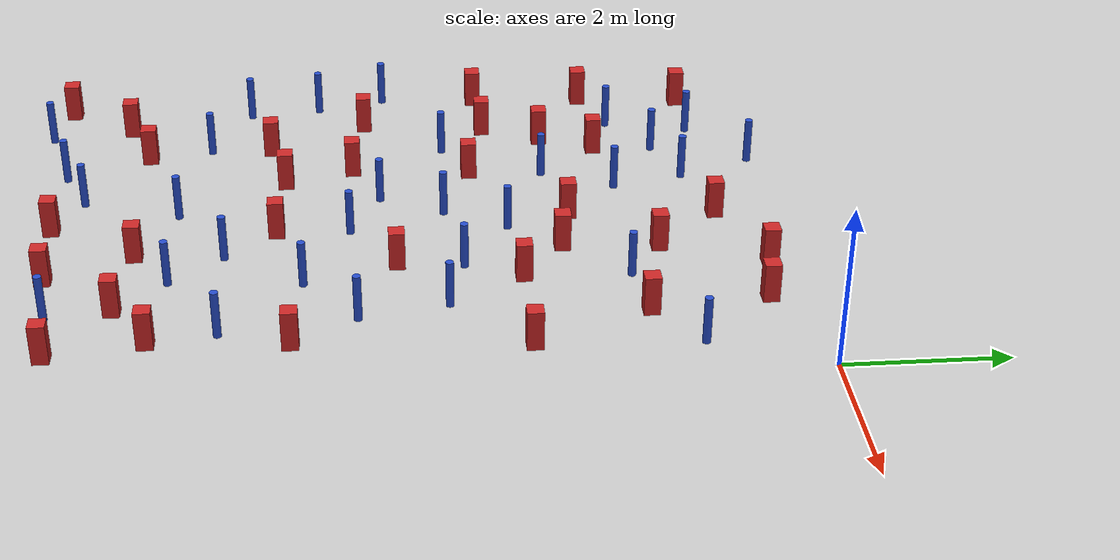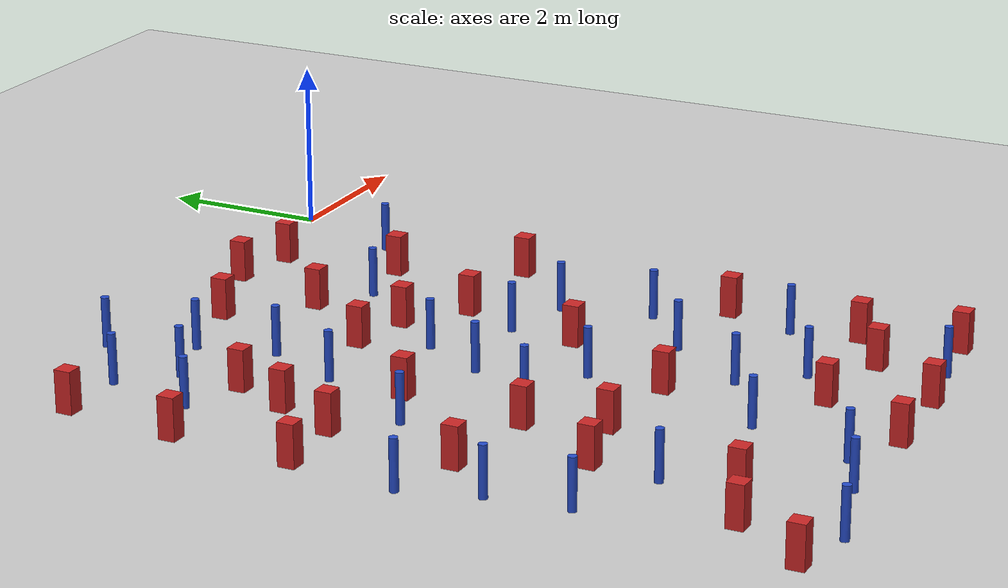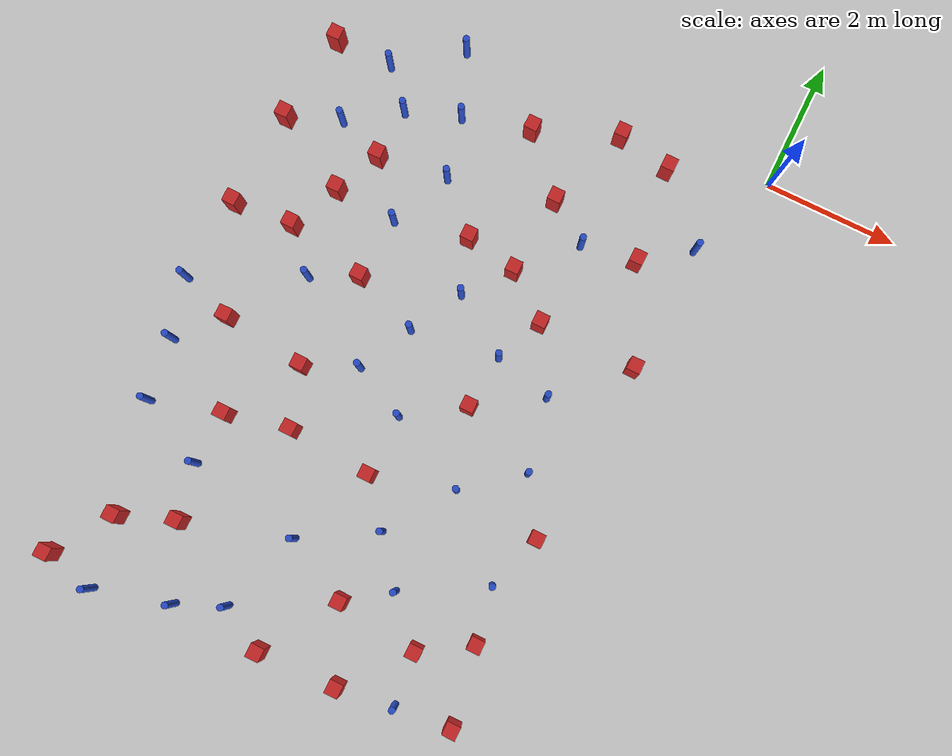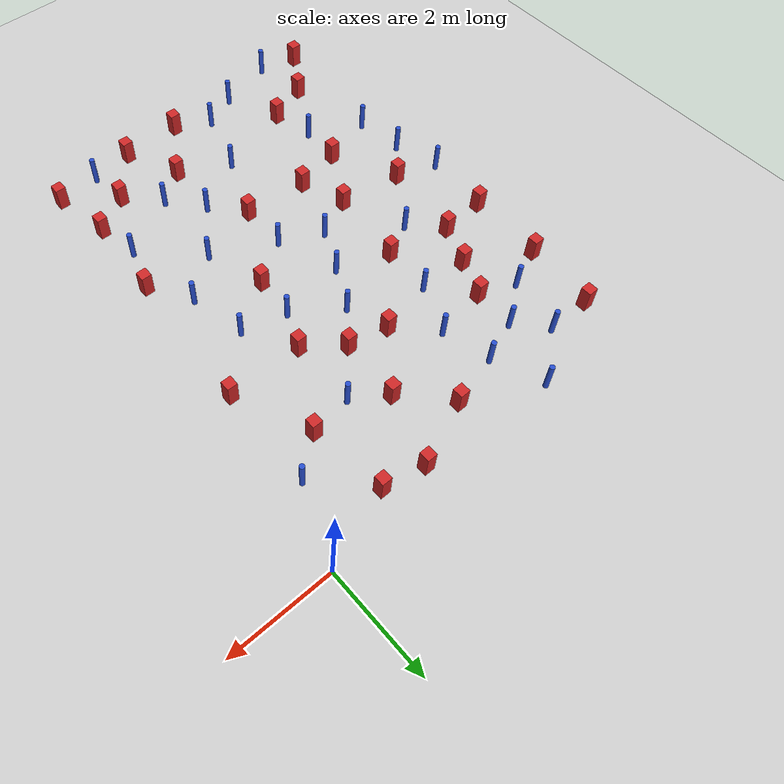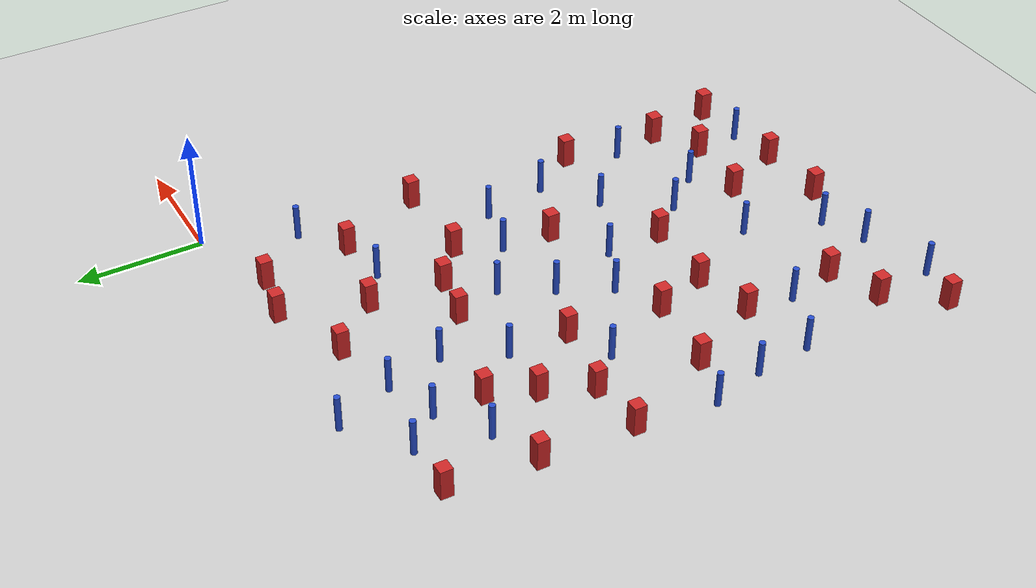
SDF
<sdf version="1.6">
 <world name="default">
  <model name="ground_plane">
   <static>1</static>
   <link name="link">
    <collision name="collision">
     <geometry><plane><normal>0 0 1</normal><size>100 100</size></plane></geometry>
     <surface><friction><ode><mu>100</mu><mu2>50</mu2></ode></friction></surface>
    </collision>
    <visual name="visual">
     <cast_shadows>0</cast_shadows>
     <geometry><plane><normal>0 0 1</normal><size>100 100</size></plane></geometry>
     <material>
      <script><uri>file://media/materials/scripts/gazebo.material</uri><name>Gazebo/Grey</name></script>
     </material>
    </visual>
   </link>
  </model>
  <model name="square_post_obstacle1">
   <static>0</static>
   <link name="link">
    <pose>0 0 0.25 0 -0 0</pose>
    <inertial>
     <mass>100</mass>
     <inertia>
      <ixx>0.166667</ixx>
      <ixy>0</ixy>
      <ixz>0</ixz>
      <iyy>0.166667</iyy>
      <iyz>0</iyz>
      <izz>0.166667</izz>
     </inertia>
    </inertial>
    <collision name="collision"><geometry><box><size>0.2 0.2 0.5</size></box></geometry></collision>
    <visual name="visual">
     <geometry><box><size>0.2 0.2 0.5</size></box></geometry>
     <material>
      <script><name>Gazebo/Red</name><uri>file://media/materials/scripts/gazebo.material</uri></script>
     </material>
    </visual>
   </link>
   <pose>-5.43486 -8.11833 0 -1e-06 7e-06 -0.000607</pose>
  </model>
  <model name="pole_obstacle1">
   <static>0</static>
   <link name="link">
    <pose>0 0 0.3 0 -0 0</pose>
    <inertial>
     <mass>1</mass>
     <inertia><ixx>0.145833</ixx><ixy>0</ixy><ixz>0</ixz><iyy>0.145833</iyy><iyz>0</iyz><izz>0.125</izz></inertia>
    </inertial>
    <collision name="collision">
     <geometry><cylinder><radius>0.05</radius><length>0.6</length></cylinder></geometry>
    </collision>
    <visual name="visual">
     <geometry><cylinder><radius>0.05</radius><length>0.6</length></cylinder></geometry>
     <material>
      <script><name>Gazebo/Blue</name><uri>file://media/materials/scripts/gazebo.material</uri></script>
     </material>
    </visual>
   </link>
   <pose>-1.56175 -4.29624 -5e-06 0 -0 2.6e-05</pose>
  </model>
  <model name="pole_obstacle2">
   <static>0</static>
   <link name="link">
    <pose>0 0 0.3 0 -0 0</pose>
    <inertial>
     <mass>1</mass>
     <inertia><ixx>0.145833</ixx><ixy>0</ixy><ixz>0</ixz><iyy>0.145833</iyy><iyz>0</iyz><izz>0.125</izz></inertia>
    </inertial>
    <collision name="collision">
     <geometry><cylinder><radius>0.05</radius><length>0.6</length></cylinder></geometry>
    </collision>
    <visual name="visual">
     <geometry><cylinder><radius>0.05</radius><length>0.6</length></cylinder></geometry>
     <material>
      <script><name>Gazebo/Blue</name><uri>file://media/materials/scripts/gazebo.material</uri></script>
     </material>
    </visual>
   </link>
   <pose>-4.2765 -2.01797 -5e-06 0 0 -1e-06</pose>
  </model>
  <model name="square_post_obstacle4">
   <static>0</static>
   <link name="link">
    <pose>0 0 0.25 0 -0 0</pose>
    <inertial>
     <mass>100</mass>
     <inertia>
      <ixx>0.166667</ixx>
      <ixy>0</ixy>
      <ixz>0</ixz>
      <iyy>0.166667</iyy>
      <iyz>0</iyz>
      <izz>0.166667</izz>
     </inertia>
    </inertial>
    <collision name="collision"><geometry><box><size>0.2 0.2 0.5</size></box></geometry></collision>
    <visual name="visual">
     <geometry><box><size>0.2 0.2 0.5</size></box></geometry>
     <material>
      <script><name>Gazebo/Red</name><uri>file://media/materials/scripts/gazebo.material</uri></script>
     </material>
    </visual>
   </link>
   <pose>-2.26076 -0.344598 0 -1e-06 7e-06 -0.000607</pose>
  </model>
  <model name="square_post_obstacle5">
   <static>0</static>
   <link name="link">
    <pose>0 0 0.25 0 -0 0</pose>
    <inertial>
     <mass>100</mass>
     <inertia>
      <ixx>0.166667</ixx>
      <ixy>0</ixy>
      <ixz>0</ixz>
      <iyy>0.166667</iyy>
      <iyz>0</iyz>
      <izz>0.166667</izz>
     </inertia>
    </inertial>
    <collision name="collision"><geometry><box><size>0.2 0.2 0.5</size></box></geometry></collision>
    <visual name="visual">
     <geometry><box><size>0.2 0.2 0.5</size></box></geometry>
     <material>
      <script><name>Gazebo/Red</name><uri>file://media/materials/scripts/gazebo.material</uri></script>
     </material>
    </visual>
   </link>
   <pose>-3.60196 -9.20631 0 -1e-06 7e-06 -0.000607</pose>
  </model>
  <model name="pole_obstacle9">
   <static>0</static>
   <link name="link">
    <pose>0 0 0.3 0 -0 0</pose>
    <inertial>
     <mass>1</mass>
     <inertia><ixx>0.145833</ixx><ixy>0</ixy><ixz>0</ixz><iyy>0.145833</iyy><iyz>0</iyz><izz>0.125</izz></inertia>
    </inertial>
    <collision name="collision">
     <geometry><cylinder><radius>0.05</radius><length>0.6</length></cylinder></geometry>
    </collision>
    <visual name="visual">
     <geometry><cylinder><radius>0.05</radius><length>0.6</length></cylinder></geometry>
     <material>
      <script><name>Gazebo/Blue</name><uri>file://media/materials/scripts/gazebo.material</uri></script>
     </material>
    </visual>
   </link>
   <pose>-3.32276 -3.48487 -5e-06 0 -0 1.5e-05</pose>
  </model>
  <model name="pole_obstacle11">
   <static>0</static>
   <link name="link">
    <pose>0 0 0.3 0 -0 0</pose>
    <inertial>
     <mass>1</mass>
     <inertia><ixx>0.145833</ixx><ixy>0</ixy><ixz>0</ixz><iyy>0.145833</iyy><iyz>0</iyz><izz>0.125</izz></inertia>
    </inertial>
    <collision name="collision">
     <geometry><cylinder><radius>0.05</radius><length>0.6</length></cylinder></geometry>
    </collision>
    <visual name="visual">
     <geometry><cylinder><radius>0.05</radius><length>0.6</length></cylinder></geometry>
     <material>
      <script><name>Gazebo/Blue</name><uri>file://media/materials/scripts/gazebo.material</uri></script>
     </material>
    </visual>
   </link>
   <pose>-2.13825 -6.03356 -5e-06 0 -0 3.3e-05</pose>
  </model>
  <model name="square_post_obstacle8">
   <static>0</static>
   <link name="link">
    <pose>0 0 0.25 0 -0 0</pose>
    <inertial>
     <mass>100</mass>
     <inertia>
      <ixx>0.166667</ixx>
      <ixy>0</ixy>
      <ixz>0</ixz>
      <iyy>0.166667</iyy>
      <iyz>0</iyz>
      <izz>0.166667</izz>
     </inertia>
    </inertial>
    <collision name="collision"><geometry><box><size>0.2 0.2 0.5</size></box></geometry></collision>
    <visual name="visual">
     <geometry><box><size>0.2 0.2 0.5</size></box></geometry>
     <material>
      <script><name>Gazebo/Red</name><uri>file://media/materials/scripts/gazebo.material</uri></script>
     </material>
    </visual>
   </link>
   <pose>-3.47759 -0.826708 0 -1e-06 7e-06 -0.000607</pose>
  </model>
  <model name="square_post_obstacle9">
   <static>0</static>
   <link name="link">
    <pose>0 0 0.25 0 -0 0</pose>
    <inertial>
     <mass>100</mass>
     <inertia>
      <ixx>0.166667</ixx>
      <ixy>0</ixy>
      <ixz>0</ixz>
      <iyy>0.166667</iyy>
      <iyz>0</iyz>
      <izz>0.166667</izz>
     </inertia>
    </inertial>
    <collision name="collision"><geometry><box><size>0.2 0.2 0.5</size></box></geometry></collision>
    <visual name="visual">
     <geometry><box><size>0.2 0.2 0.5</size></box></geometry>
     <material>
      <script><name>Gazebo/Red</name><uri>file://media/materials/scripts/gazebo.material</uri></script>
     </material>
    </visual>
   </link>
   <pose>-2.89968 -8.10986 0 -1e-06 7e-06 -0.000607</pose>
  </model>
  <model name="square_post_obstacle11">
   <static>0</static>
   <link name="link">
    <pose>0 0 0.25 0 -0 0</pose>
    <inertial>
     <mass>100</mass>
     <inertia>
      <ixx>0.166667</ixx>
      <ixy>0</ixy>
      <ixz>0</ixz>
      <iyy>0.166667</iyy>
      <iyz>0</iyz>
      <izz>0.166667</izz>
     </inertia>
    </inertial>
    <collision name="collision"><geometry><box><size>0.2 0.2 0.5</size></box></geometry></collision>
    <visual name="visual">
     <geometry><box><size>0.2 0.2 0.5</size></box></geometry>
     <material>
      <script><name>Gazebo/Red</name><uri>file://media/materials/scripts/gazebo.material</uri></script>
     </material>
    </visual>
   </link>
   <pose>-2.71039 -1.64454 0 -1e-06 7e-06 -0.000607</pose>
  </model>
  <model name="square_post_obstacle12">
   <static>0</static>
   <link name="link">
    <pose>0 0 0.25 0 -0 0</pose>
    <inertial>
     <mass>100</mass>
     <inertia>
      <ixx>0.166667</ixx>
      <ixy>0</ixy>
      <ixz>0</ixz>
      <iyy>0.166667</iyy>
      <iyz>0</iyz>
      <izz>0.166667</izz>
     </inertia>
    </inertial>
    <collision name="collision"><geometry><box><size>0.2 0.2 0.5</size></box></geometry></collision>
    <visual name="visual">
     <geometry><box><size>0.2 0.2 0.5</size></box></geometry>
     <material>
      <script><name>Gazebo/Red</name><uri>file://media/materials/scripts/gazebo.material</uri></script>
     </material>
    </visual>
   </link>
   <pose>-0.833715 -6.15632 0 -1e-06 7e-06 -0.000607</pose>
  </model>
  <model name="square_post_obstacle17">
   <static>0</static>
   <link name="link">
    <pose>0 0 0.25 0 -0 0</pose>
    <inertial>
     <mass>100</mass>
     <inertia>
      <ixx>0.166667</ixx>
      <ixy>0</ixy>
      <ixz>0</ixz>
      <iyy>0.166667</iyy>
      <iyz>0</iyz>
      <izz>0.166667</izz>
     </inertia>
    </inertial>
    <collision name="collision"><geometry><box><size>0.2 0.2 0.5</size></box></geometry></collision>
    <visual name="visual">
     <geometry><box><size>0.2 0.2 0.5</size></box></geometry>
     <material>
      <script><name>Gazebo/Red</name><uri>file://media/materials/scripts/gazebo.material</uri></script>
     </material>
    </visual>
   </link>
   <pose>-5.96872 -3.64636 0 -1e-06 7e-06 -0.000607</pose>
  </model>
  <model name="square_post_obstacle19">
   <static>0</static>
   <link name="link">
    <pose>0 0 0.25 0 -0 0</pose>
    <inertial>
     <mass>100</mass>
     <inertia>
      <ixx>0.166667</ixx>
      <ixy>0</ixy>
      <ixz>0</ixz>
      <iyy>0.166667</iyy>
      <iyz>0</iyz>
      <izz>0.166667</izz>
     </inertia>
    </inertial>
    <collision name="collision"><geometry><box><size>0.2 0.2 0.5</size></box></geometry></collision>
    <visual name="visual">
     <geometry><box><size>0.2 0.2 0.5</size></box></geometry>
     <material>
      <script><name>Gazebo/Red</name><uri>file://media/materials/scripts/gazebo.material</uri></script>
     </material>
    </visual>
   </link>
   <pose>-1.44666 -0.499345 0 -1e-06 7e-06 -0.000607</pose>
  </model>
  <model name="square_post_obstacle20">
   <static>0</static>
   <link name="link">
    <pose>0 0 0.25 0 -0 0</pose>
    <inertial>
     <mass>100</mass>
     <inertia>
      <ixx>0.166667</ixx>
      <ixy>0</ixy>
      <ixz>0</ixz>
      <iyy>0.166667</iyy>
      <iyz>0</iyz>
      <izz>0.166667</izz>
     </inertia>
    </inertial>
    <collision name="collision"><geometry><box><size>0.2 0.2 0.5</size></box></geometry></collision>
    <visual name="visual">
     <geometry><box><size>0.2 0.2 0.5</size></box></geometry>
     <material>
      <script><name>Gazebo/Red</name><uri>file://media/materials/scripts/gazebo.material</uri></script>
     </material>
    </visual>
   </link>
   <pose>-2.49949 -4.89652 0 -1e-06 7e-06 -0.000607</pose>
  </model>
  <model name="pole_obstacle25">
   <static>0</static>
   <link name="link">
    <pose>0 0 0.3 0 -0 0</pose>
    <inertial>
     <mass>1</mass>
     <inertia><ixx>0.145833</ixx><ixy>0</ixy><ixz>0</ixz><iyy>0.145833</iyy><iyz>0</iyz><izz>0.125</izz></inertia>
    </inertial>
    <collision name="collision">
     <geometry><cylinder><radius>0.05</radius><length>0.6</length></cylinder></geometry>
    </collision>
    <visual name="visual">
     <geometry><cylinder><radius>0.05</radius><length>0.6</length></cylinder></geometry>
     <material>
      <script><name>Gazebo/Blue</name><uri>file://media/materials/scripts/gazebo.material</uri></script>
     </material>
    </visual>
   </link>
   <pose>-4.88508 -0.141023 -5e-06 0 0 -2e-06</pose>
  </model>
  <model name="square_post_obstacle24">
   <static>0</static>
   <link name="link">
    <pose>0 0 0.25 0 -0 0</pose>
    <inertial>
     <mass>100</mass>
     <inertia>
      <ixx>0.166667</ixx>
      <ixy>0</ixy>
      <ixz>0</ixz>
      <iyy>0.166667</iyy>
      <iyz>0</iyz>
      <izz>0.166667</izz>
     </inertia>
    </inertial>
    <collision name="collision"><geometry><box><size>0.2 0.2 0.5</size></box></geometry></collision>
    <visual name="visual">
     <geometry><box><size>0.2 0.2 0.5</size></box></geometry>
     <material>
      <script><name>Gazebo/Red</name><uri>file://media/materials/scripts/gazebo.material</uri></script>
     </material>
    </visual>
   </link>
   <pose>-6.8776 -3.72016 0 -1e-06 7e-06 -0.000607</pose>
  </model>
  <model name="square_post_obstacle30">
   <static>0</static>
   <link name="link">
    <pose>0 0 0.25 0 -0 0</pose>
    <inertial>
     <mass>100</mass>
     <inertia>
      <ixx>0.166667</ixx>
      <ixy>0</ixy>
      <ixz>0</ixz>
      <iyy>0.166667</iyy>
      <iyz>0</iyz>
      <izz>0.166667</izz>
     </inertia>
    </inertial>
    <collision name="collision"><geometry><box><size>0.2 0.2 0.5</size></box></geometry></collision>
    <visual name="visual">
     <geometry><box><size>0.2 0.2 0.5</size></box></geometry>
     <material>
      <script><name>Gazebo/Red</name><uri>file://media/materials/scripts/gazebo.material</uri></script>
     </material>
    </visual>
   </link>
   <pose>-4.61162 -6.2922 0 -1e-06 7e-06 -0.000607</pose>
  </model>
  <model name="square_post_obstacle34">
   <static>0</static>
   <link name="link">
    <pose>0 0 0.25 0 -0 0</pose>
    <inertial>
     <mass>100</mass>
     <inertia>
      <ixx>0.166667</ixx>
      <ixy>0</ixy>
      <ixz>0</ixz>
      <iyy>0.166667</iyy>
      <iyz>0</iyz>
      <izz>0.166667</izz>
     </inertia>
    </inertial>
    <collision name="collision"><geometry><box><size>0.2 0.2 0.5</size></box></geometry></collision>
    <visual name="visual">
     <geometry><box><size>0.2 0.2 0.5</size></box></geometry>
     <material>
      <script><name>Gazebo/Red</name><uri>file://media/materials/scripts/gazebo.material</uri></script>
     </material>
    </visual>
   </link>
   <pose>-2.799 -2.84364 0 -1e-06 7e-06 -0.000607</pose>
  </model>
  <model name="pole_obstacle34">
   <static>0</static>
   <link name="link">
    <pose>0 0 0.3 0 -0 0</pose>
    <inertial>
     <mass>1</mass>
     <inertia><ixx>0.145833</ixx><ixy>0</ixy><ixz>0</ixz><iyy>0.145833</iyy><iyz>0</iyz><izz>0.125</izz></inertia>
    </inertial>
    <collision name="collision">
     <geometry><cylinder><radius>0.05</radius><length>0.6</length></cylinder></geometry>
    </collision>
    <visual name="visual">
     <geometry><cylinder><radius>0.05</radius><length>0.6</length></cylinder></geometry>
     <material>
      <script><name>Gazebo/Blue</name><uri>file://media/materials/scripts/gazebo.material</uri></script>
     </material>
    </visual>
   </link>
   <pose>-1.33434 -5.38108 -5e-06 0 -0 2.6e-05</pose>
  </model>
  <model name="pole_obstacle36">
   <static>0</static>
   <link name="link">
    <pose>0 0 0.3 0 -0 0</pose>
    <inertial>
     <mass>1</mass>
     <inertia><ixx>0.145833</ixx><ixy>0</ixy><ixz>0</ixz><iyy>0.145833</iyy><iyz>0</iyz><izz>0.125</izz></inertia>
    </inertial>
    <collision name="collision">
     <geometry><cylinder><radius>0.05</radius><length>0.6</length></cylinder></geometry>
    </collision>
    <visual name="visual">
     <geometry><cylinder><radius>0.05</radius><length>0.6</length></cylinder></geometry>
     <material>
      <script><name>Gazebo/Blue</name><uri>file://media/materials/scripts/gazebo.material</uri></script>
     </material>
    </visual>
   </link>
   <pose>-1.59232 -9.04654 -5e-06 0 0 -1e-06</pose>
  </model>
  <model name="pole_obstacle39">
   <static>0</static>
   <link name="link">
    <pose>0 0 0.3 0 -0 0</pose>
    <inertial>
     <mass>1</mass>
     <inertia><ixx>0.145833</ixx><ixy>0</ixy><ixz>0</ixz><iyy>0.145833</iyy><iyz>0</iyz><izz>0.125</izz></inertia>
    </inertial>
    <collision name="collision">
     <geometry><cylinder><radius>0.05</radius><length>0.6</length></cylinder></geometry>
    </collision>
    <visual name="visual">
     <geometry><cylinder><radius>0.05</radius><length>0.6</length></cylinder></geometry>
     <material>
      <script><name>Gazebo/Blue</name><uri>file://media/materials/scripts/gazebo.material</uri></script>
     </material>
    </visual>
   </link>
   <pose>-1.10255 -7.00117 -5e-06 0 0 -6e-05</pose>
  </model>
  <model name="square_post_obstacle42">
   <static>0</static>
   <link name="link">
    <pose>0 0 0.25 0 -0 0</pose>
    <inertial>
     <mass>100</mass>
     <inertia>
      <ixx>0.166667</ixx>
      <ixy>0</ixy>
      <ixz>0</ixz>
      <iyy>0.166667</iyy>
      <iyz>0</iyz>
      <izz>0.166667</izz>
     </inertia>
    </inertial>
    <collision name="collision"><geometry><box><size>0.2 0.2 0.5</size></box></geometry></collision>
    <visual name="visual">
     <geometry><box><size>0.2 0.2 0.5</size></box></geometry>
     <material>
      <script><name>Gazebo/Red</name><uri>file://media/materials/scripts/gazebo.material</uri></script>
     </material>
    </visual>
   </link>
   <pose>-3.35059 -6.38147 0 -1e-06 7e-06 -0.000607</pose>
  </model>
  <model name="pole_obstacle43">
   <static>0</static>
   <link name="link">
    <pose>0 0 0.3 0 -0 0</pose>
    <inertial>
     <mass>1</mass>
     <inertia><ixx>0.145833</ixx><ixy>0</ixy><ixz>0</ixz><iyy>0.145833</iyy><iyz>0</iyz><izz>0.125</izz></inertia>
    </inertial>
    <collision name="collision">
     <geometry><cylinder><radius>0.05</radius><length>0.6</length></cylinder></geometry>
    </collision>
    <visual name="visual">
     <geometry><cylinder><radius>0.05</radius><length>0.6</length></cylinder></geometry>
     <material>
      <script><name>Gazebo/Blue</name><uri>file://media/materials/scripts/gazebo.material</uri></script>
     </material>
    </visual>
   </link>
   <pose>-3.87862 -7.63569 -5e-06 0 0 -6.8e-05</pose>
  </model>
  <model name="pole_obstacle45">
   <static>0</static>
   <link name="link">
    <pose>0 0 0.3 0 -0 0</pose>
    <inertial>
     <mass>1</mass>
     <inertia><ixx>0.145833</ixx><ixy>0</ixy><ixz>0</ixz><iyy>0.145833</iyy><iyz>0</iyz><izz>0.125</izz></inertia>
    </inertial>
    <collision name="collision">
     <geometry><cylinder><radius>0.05</radius><length>0.6</length></cylinder></geometry>
    </collision>
    <visual name="visual">
     <geometry><cylinder><radius>0.05</radius><length>0.6</length></cylinder></geometry>
     <material>
      <script><name>Gazebo/Blue</name><uri>file://media/materials/scripts/gazebo.material</uri></script>
     </material>
    </visual>
   </link>
   <pose>-5.61356 -7.31077 -5e-06 0 0 -6.7e-05</pose>
  </model>
  <model name="pole_obstacle48">
   <static>0</static>
   <link name="link">
    <pose>0 0 0.3 0 -0 0</pose>
    <inertial>
     <mass>1</mass>
     <inertia><ixx>0.145833</ixx><ixy>0</ixy><ixz>0</ixz><iyy>0.145833</iyy><iyz>0</iyz><izz>0.125</izz></inertia>
    </inertial>
    <collision name="collision">
     <geometry><cylinder><radius>0.05</radius><length>0.6</length></cylinder></geometry>
    </collision>
    <visual name="visual">
     <geometry><cylinder><radius>0.05</radius><length>0.6</length></cylinder></geometry>
     <material>
      <script><name>Gazebo/Blue</name><uri>file://media/materials/scripts/gazebo.material</uri></script>
     </material>
    </visual>
   </link>
   <pose>-6.63598 -6.8141 -5e-06 0 0 -6.7e-05</pose>
  </model>
  <model name="pole_obstacle51">
   <static>0</static>
   <link name="link">
    <pose>0 0 0.3 0 -0 0</pose>
    <inertial>
     <mass>1</mass>
     <inertia><ixx>0.145833</ixx><ixy>0</ixy><ixz>0</ixz><iyy>0.145833</iyy><iyz>0</iyz><izz>0.125</izz></inertia>
    </inertial>
    <collision name="collision">
     <geometry><cylinder><radius>0.05</radius><length>0.6</length></cylinder></geometry>
    </collision>
    <visual name="visual">
     <geometry><cylinder><radius>0.05</radius><length>0.6</length></cylinder></geometry>
     <material>
      <script><name>Gazebo/Blue</name><uri>file://media/materials/scripts/gazebo.material</uri></script>
     </material>
    </visual>
   </link>
   <pose>-5.29544 -1.38832 -5e-06 0 0 -5.9e-05</pose>
  </model>
  <model name="pole_obstacle52">
   <static>0</static>
   <link name="link">
    <pose>0 0 0.3 0 -0 0</pose>
    <inertial>
     <mass>1</mass>
     <inertia><ixx>0.145833</ixx><ixy>0</ixy><ixz>0</ixz><iyy>0.145833</iyy><iyz>0</iyz><izz>0.125</izz></inertia>
    </inertial>
    <collision name="collision">
     <geometry><cylinder><radius>0.05</radius><length>0.6</length></cylinder></geometry>
    </collision>
    <visual name="visual">
     <geometry><cylinder><radius>0.05</radius><length>0.6</length></cylinder></geometry>
     <material>
      <script><name>Gazebo/Blue</name><uri>file://media/materials/scripts/gazebo.material</uri></script>
     </material>
    </visual>
   </link>
   <pose>-6.09843 -9.4871 -5e-06 0 -0 2e-05</pose>
  </model>
  <model name="square_post_obstacle52">
   <static>0</static>
   <link name="link">
    <pose>0 0 0.25 0 -0 0</pose>
    <inertial>
     <mass>100</mass>
     <inertia>
      <ixx>0.166667</ixx>
      <ixy>0</ixy>
      <ixz>0</ixz>
      <iyy>0.166667</iyy>
      <iyz>0</iyz>
      <izz>0.166667</izz>
     </inertia>
    </inertial>
    <collision name="collision"><geometry><box><size>0.2 0.2 0.5</size></box></geometry></collision>
    <visual name="visual">
     <geometry><box><size>0.2 0.2 0.5</size></box></geometry>
     <material>
      <script><name>Gazebo/Red</name><uri>file://media/materials/scripts/gazebo.material</uri></script>
     </material>
    </visual>
   </link>
   <pose>-0.757868 -8.95267 0 -1e-06 7e-06 -0.000607</pose>
  </model>
  <model name="pole_obstacle54">
   <static>0</static>
   <link name="link">
    <pose>0 0 0.3 0 -0 0</pose>
    <inertial>
     <mass>1</mass>
     <inertia><ixx>0.145833</ixx><ixy>0</ixy><ixz>0</ixz><iyy>0.145833</iyy><iyz>0</iyz><izz>0.125</izz></inertia>
    </inertial>
    <collision name="collision">
     <geometry><cylinder><radius>0.05</radius><length>0.6</length></cylinder></geometry>
    </collision>
    <visual name="visual">
     <geometry><cylinder><radius>0.05</radius><length>0.6</length></cylinder></geometry>
     <material>
      <script><name>Gazebo/Blue</name><uri>file://media/materials/scripts/gazebo.material</uri></script>
     </material>
    </visual>
   </link>
   <pose>-4.68913 -2.93747 -5e-06 0 0 -3e-06</pose>
  </model>
  <model name="pole_obstacle55">
   <static>0</static>
   <link name="link">
    <pose>0 0 0.3 0 -0 0</pose>
    <inertial>
     <mass>1</mass>
     <inertia><ixx>0.145833</ixx><ixy>0</ixy><ixz>0</ixz><iyy>0.145833</iyy><iyz>0</iyz><izz>0.125</izz></inertia>
    </inertial>
    <collision name="collision">
     <geometry><cylinder><radius>0.05</radius><length>0.6</length></cylinder></geometry>
    </collision>
    <visual name="visual">
     <geometry><cylinder><radius>0.05</radius><length>0.6</length></cylinder></geometry>
     <material>
      <script><name>Gazebo/Blue</name><uri>file://media/materials/scripts/gazebo.material</uri></script>
     </material>
    </visual>
   </link>
   <pose>-5.42375 -4.22332 -5e-06 0 0 -6.6e-05</pose>
  </model>
  <model name="square_post_obstacle56">
   <static>0</static>
   <link name="link">
    <pose>0 0 0.25 0 -0 0</pose>
    <inertial>
     <mass>100</mass>
     <inertia>
      <ixx>0.166667</ixx>
      <ixy>0</ixy>
      <ixz>0</ixz>
      <iyy>0.166667</iyy>
      <iyz>0</iyz>
      <izz>0.166667</izz>
     </inertia>
    </inertial>
    <collision name="collision"><geometry><box><size>0.2 0.2 0.5</size></box></geometry></collision>
    <visual name="visual">
     <geometry><box><size>0.2 0.2 0.5</size></box></geometry>
     <material>
      <script><name>Gazebo/Red</name><uri>file://media/materials/scripts/gazebo.material</uri></script>
     </material>
    </visual>
   </link>
   <pose>-2.11756 -3.37478 0 -1e-06 7e-06 -0.000607</pose>
  </model>
  <model name="pole_obstacle58">
   <static>0</static>
   <link name="link">
    <pose>0 0 0.3 0 -0 0</pose>
    <inertial>
     <mass>1</mass>
     <inertia><ixx>0.145833</ixx><ixy>0</ixy><ixz>0</ixz><iyy>0.145833</iyy><iyz>0</iyz><izz>0.125</izz></inertia>
    </inertial>
    <collision name="collision">
     <geometry><cylinder><radius>0.05</radius><length>0.6</length></cylinder></geometry>
    </collision>
    <visual name="visual">
     <geometry><cylinder><radius>0.05</radius><length>0.6</length></cylinder></geometry>
     <material>
      <script><name>Gazebo/Blue</name><uri>file://media/materials/scripts/gazebo.material</uri></script>
     </material>
    </visual>
   </link>
   <pose>-6.046 -1.91579 -5e-06 0 0 -5.9e-05</pose>
  </model>
  <model name="square_post_obstacle59">
   <static>0</static>
   <link name="link">
    <pose>0 0 0.25 0 -0 0</pose>
    <inertial>
     <mass>100</mass>
     <inertia>
      <ixx>0.166667</ixx>
      <ixy>0</ixy>
      <ixz>0</ixz>
      <iyy>0.166667</iyy>
      <iyz>0</iyz>
      <izz>0.166667</izz>
     </inertia>
    </inertial>
    <collision name="collision"><geometry><box><size>0.2 0.2 0.5</size></box></geometry></collision>
    <visual name="visual">
     <geometry><box><size>0.2 0.2 0.5</size></box></geometry>
     <material>
      <script><name>Gazebo/Red</name><uri>file://media/materials/scripts/gazebo.material</uri></script>
     </material>
    </visual>
   </link>
   <pose>-5.32028 -2.18047 0 -1e-06 7e-06 -0.000607</pose>
  </model>
  <model name="pole_obstacle63">
   <static>0</static>
   <link name="link">
    <pose>0 0 0.3 0 -0 0</pose>
    <inertial>
     <mass>1</mass>
     <inertia><ixx>0.145833</ixx><ixy>0</ixy><ixz>0</ixz><iyy>0.145833</iyy><iyz>0</iyz><izz>0.125</izz></inertia>
    </inertial>
    <collision name="collision">
     <geometry><cylinder><radius>0.05</radius><length>0.6</length></cylinder></geometry>
    </collision>
    <visual name="visual">
     <geometry><cylinder><radius>0.05</radius><length>0.6</length></cylinder></geometry>
     <material>
      <script><name>Gazebo/Blue</name><uri>file://media/materials/scripts/gazebo.material</uri></script>
     </material>
    </visual>
   </link>
   <pose>-3.74563 -4.27056 -5e-06 0 0 -6.8e-05</pose>
  </model>
  <model name="square_post_obstacle62">
   <static>0</static>
   <link name="link">
    <pose>0 0 0.25 0 -0 0</pose>
    <inertial>
     <mass>100</mass>
     <inertia>
      <ixx>0.166667</ixx>
      <ixy>0</ixy>
      <ixz>0</ixz>
      <iyy>0.166667</iyy>
      <iyz>0</iyz>
      <izz>0.166667</izz>
     </inertia>
    </inertial>
    <collision name="collision"><geometry><box><size>0.2 0.2 0.5</size></box></geometry></collision>
    <visual name="visual">
     <geometry><box><size>0.2 0.2 0.5</size></box></geometry>
     <material>
      <script><name>Gazebo/Red</name><uri>file://media/materials/scripts/gazebo.material</uri></script>
     </material>
    </visual>
   </link>
   <pose>-1.2685 -1.94788 0 -1e-06 7e-06 -0.000607</pose>
  </model>
  <model name="square_post_obstacle68">
   <static>0</static>
   <link name="link">
    <pose>0 0 0.25 0 -0 0</pose>
    <inertial>
     <mass>100</mass>
     <inertia>
      <ixx>0.166667</ixx>
      <ixy>0</ixy>
      <ixz>0</ixz>
      <iyy>0.166667</iyy>
      <iyz>0</iyz>
      <izz>0.166667</izz>
     </inertia>
    </inertial>
    <collision name="collision"><geometry><box><size>0.2 0.2 0.5</size></box></geometry></collision>
    <visual name="visual">
     <geometry><box><size>0.2 0.2 0.5</size></box></geometry>
     <material>
      <script><name>Gazebo/Red</name><uri>file://media/materials/scripts/gazebo.material</uri></script>
     </material>
    </visual>
   </link>
   <pose>-5.55745 -6.50604 0 -1e-06 7e-06 -0.000607</pose>
  </model>
  <model name="square_post_obstacle70">
   <static>0</static>
   <link name="link">
    <pose>0 0 0.25 0 -0 0</pose>
    <inertial>
     <mass>100</mass>
     <inertia>
      <ixx>0.166667</ixx>
      <ixy>0</ixy>
      <ixz>0</ixz>
      <iyy>0.166667</iyy>
      <iyz>0</iyz>
      <izz>0.166667</izz>
     </inertia>
    </inertial>
    <collision name="collision"><geometry><box><size>0.2 0.2 0.5</size></box></geometry></collision>
    <visual name="visual">
     <geometry><box><size>0.2 0.2 0.5</size></box></geometry>
     <material>
      <script><name>Gazebo/Red</name><uri>file://media/materials/scripts/gazebo.material</uri></script>
     </material>
    </visual>
   </link>
   <pose>-0.640924 -3.37443 0 -1e-06 7e-06 -0.000607</pose>
  </model>
  <model name="square_post_obstacle72">
   <static>0</static>
   <link name="link">
    <pose>0 0 0.25 0 -0 0</pose>
    <inertial>
     <mass>100</mass>
     <inertia>
      <ixx>0.166667</ixx>
      <ixy>0</ixy>
      <ixz>0</ixz>
      <iyy>0.166667</iyy>
      <iyz>0</iyz>
      <izz>0.166667</izz>
     </inertia>
    </inertial>
    <collision name="collision"><geometry><box><size>0.2 0.2 0.5</size></box></geometry></collision>
    <visual name="visual">
     <geometry><box><size>0.2 0.2 0.5</size></box></geometry>
     <material>
      <script><name>Gazebo/Red</name><uri>file://media/materials/scripts/gazebo.material</uri></script>
     </material>
    </visual>
   </link>
   <pose>-1.67316 -8.26019 0 -1e-06 7e-06 -0.000607</pose>
  </model>
  <model name="square_post_obstacle74">
   <static>0</static>
   <link name="link">
    <pose>0 0 0.25 0 -0 0</pose>
    <inertial>
     <mass>100</mass>
     <inertia>
      <ixx>0.166667</ixx>
      <ixy>0</ixy>
      <ixz>0</ixz>
      <iyy>0.166667</iyy>
      <iyz>0</iyz>
      <izz>0.166667</izz>
     </inertia>
    </inertial>
    <collision name="collision"><geometry><box><size>0.2 0.2 0.5</size></box></geometry></collision>
    <visual name="visual">
     <geometry><box><size>0.2 0.2 0.5</size></box></geometry>
     <material>
      <script><name>Gazebo/Red</name><uri>file://media/materials/scripts/gazebo.material</uri></script>
     </material>
    </visual>
   </link>
   <pose>-6.8116 -2.2308 0 -1e-06 7e-06 -0.000607</pose>
  </model>
  <model name="pole_obstacle76">
   <static>0</static>
   <link name="link">
    <pose>0 0 0.3 0 -0 0</pose>
    <inertial>
     <mass>1</mass>
     <inertia><ixx>0.145833</ixx><ixy>0</ixy><ixz>0</ixz><iyy>0.145833</iyy><iyz>0</iyz><izz>0.125</izz></inertia>
    </inertial>
    <collision name="collision">
     <geometry><cylinder><radius>0.05</radius><length>0.6</length></cylinder></geometry>
    </collision>
    <visual name="visual">
     <geometry><cylinder><radius>0.05</radius><length>0.6</length></cylinder></geometry>
     <material>
      <script><name>Gazebo/Blue</name><uri>file://media/materials/scripts/gazebo.material</uri></script>
     </material>
    </visual>
   </link>
   <pose>-5.8028 -0.835955 -5e-06 0 -0 2e-06</pose>
  </model>
  <model name="square_post_obstacle77">
   <static>0</static>
   <link name="link">
    <pose>0 0 0.25 0 -0 0</pose>
    <inertial>
     <mass>100</mass>
     <inertia>
      <ixx>0.166667</ixx>
      <ixy>0</ixy>
      <ixz>0</ixz>
      <iyy>0.166667</iyy>
      <iyz>0</iyz>
      <izz>0.166667</izz>
     </inertia>
    </inertial>
    <collision name="collision"><geometry><box><size>0.2 0.2 0.5</size></box></geometry></collision>
    <visual name="visual">
     <geometry><box><size>0.2 0.2 0.5</size></box></geometry>
     <material>
      <script><name>Gazebo/Red</name><uri>file://media/materials/scripts/gazebo.material</uri></script>
     </material>
    </visual>
   </link>
   <pose>-6.18025 -5.25849 0 -1e-06 7e-06 -0.000607</pose>
  </model>
  <model name="square_post_obstacle79">
   <static>0</static>
   <link name="link">
    <pose>0 0 0.25 0 -0 0</pose>
    <inertial>
     <mass>100</mass>
     <inertia>
      <ixx>0.166667</ixx>
      <ixy>0</ixy>
      <ixz>0</ixz>
      <iyy>0.166667</iyy>
      <iyz>0</iyz>
      <izz>0.166667</izz>
     </inertia>
    </inertial>
    <collision name="collision"><geometry><box><size>0.2 0.2 0.5</size></box></geometry></collision>
    <visual name="visual">
     <geometry><box><size>0.2 0.2 0.5</size></box></geometry>
     <material>
      <script><name>Gazebo/Red</name><uri>file://media/materials/scripts/gazebo.material</uri></script>
     </material>
    </visual>
   </link>
   <pose>-6.67661 -0.844757 0 -1e-06 7e-06 -0.000607</pose>
  </model>
  <model name="pole_obstacle80">
   <static>0</static>
   <link name="link">
    <pose>0 0 0.3 0 -0 0</pose>
    <inertial>
     <mass>1</mass>
     <inertia><ixx>0.145833</ixx><ixy>0</ixy><ixz>0</ixz><iyy>0.145833</iyy><iyz>0</iyz><izz>0.125</izz></inertia>
    </inertial>
    <collision name="collision">
     <geometry><cylinder><radius>0.05</radius><length>0.6</length></cylinder></geometry>
    </collision>
    <visual name="visual">
     <geometry><cylinder><radius>0.05</radius><length>0.6</length></cylinder></geometry>
     <material>
      <script><name>Gazebo/Blue</name><uri>file://media/materials/scripts/gazebo.material</uri></script>
     </material>
    </visual>
   </link>
   <pose>-4.96905 -9.16989 -5e-06 0 -0 2e-05</pose>
  </model>
  <model name="pole_obstacle83">
   <static>0</static>
   <link name="link">
    <pose>0 0 0.3 0 -0 0</pose>
    <inertial>
     <mass>1</mass>
     <inertia><ixx>0.145833</ixx><ixy>0</ixy><ixz>0</ixz><iyy>0.145833</iyy><iyz>0</iyz><izz>0.125</izz></inertia>
    </inertial>
    <collision name="collision">
     <geometry><cylinder><radius>0.05</radius><length>0.6</length></cylinder></geometry>
    </collision>
    <visual name="visual">
     <geometry><cylinder><radius>0.05</radius><length>0.6</length></cylinder></geometry>
     <material>
      <script><name>Gazebo/Blue</name><uri>file://media/materials/scripts/gazebo.material</uri></script>
     </material>
    </visual>
   </link>
   <pose>-6.75106 -5.88114 -4e-06 -1e-06 -0 -0.000164</pose>
  </model>
  <model name="square_post_obstacle83">
   <static>0</static>
   <link name="link">
    <pose>0 0 0.25 0 -0 0</pose>
    <inertial>
     <mass>100</mass>
     <inertia>
      <ixx>0.166667</ixx>
      <ixy>0</ixy>
      <ixz>0</ixz>
      <iyy>0.166667</iyy>
      <iyz>0</iyz>
      <izz>0.166667</izz>
     </inertia>
    </inertial>
    <collision name="collision"><geometry><box><size>0.2 0.2 0.5</size></box></geometry></collision>
    <visual name="visual">
     <geometry><box><size>0.2 0.2 0.5</size></box></geometry>
     <material>
      <script><name>Gazebo/Red</name><uri>file://media/materials/scripts/gazebo.material</uri></script>
     </material>
    </visual>
   </link>
   <pose>-3.58451 -2.69447 0 -1e-06 7e-06 -0.000607</pose>
  </model>
  <model name="square_post_obstacle89">
   <static>0</static>
   <link name="link">
    <pose>0 0 0.25 0 -0 0</pose>
    <inertial>
     <mass>100</mass>
     <inertia>
      <ixx>0.166667</ixx>
      <ixy>0</ixy>
      <ixz>0</ixz>
      <iyy>0.166667</iyy>
      <iyz>0</iyz>
      <izz>0.166667</izz>
     </inertia>
    </inertial>
    <collision name="collision"><geometry><box><size>0.2 0.2 0.5</size></box></geometry></collision>
    <visual name="visual">
     <geometry><box><size>0.2 0.2 0.5</size></box></geometry>
     <material>
      <script><name>Gazebo/Red</name><uri>file://media/materials/scripts/gazebo.material</uri></script>
     </material>
    </visual>
   </link>
   <pose>-6.25525 -8.43215 0 -1e-06 7e-06 -0.000607</pose>
  </model>
  <model name="square_post_obstacle90">
   <static>0</static>
   <link name="link">
    <pose>0 0 0.25 0 -0 0</pose>
    <inertial>
     <mass>100</mass>
     <inertia>
      <ixx>0.166667</ixx>
      <ixy>0</ixy>
      <ixz>0</ixz>
      <iyy>0.166667</iyy>
      <iyz>0</iyz>
      <izz>0.166667</izz>
     </inertia>
    </inertial>
    <collision name="collision"><geometry><box><size>0.2 0.2 0.5</size></box></geometry></collision>
    <visual name="visual">
     <geometry><box><size>0.2 0.2 0.5</size></box></geometry>
     <material>
      <script><name>Gazebo/Red</name><uri>file://media/materials/scripts/gazebo.material</uri></script>
     </material>
    </visual>
   </link>
   <pose>-2.42324 -9.15925 0 -1e-06 7e-06 -0.000607</pose>
  </model>
  <model name="pole_obstacle89">
   <static>0</static>
   <link name="link">
    <pose>0 0 0.3 0 -0 0</pose>
    <inertial>
     <mass>1</mass>
     <inertia><ixx>0.145833</ixx><ixy>0</ixy><ixz>0</ixz><iyy>0.145833</iyy><iyz>0</iyz><izz>0.125</izz></inertia>
    </inertial>
    <collision name="collision">
     <geometry><cylinder><radius>0.05</radius><length>0.6</length></cylinder></geometry>
    </collision>
    <visual name="visual">
     <geometry><cylinder><radius>0.05</radius><length>0.6</length></cylinder></geometry>
     <material>
      <script><name>Gazebo/Blue</name><uri>file://media/materials/scripts/gazebo.material</uri></script>
     </material>
    </visual>
   </link>
   <pose>-2.81641 -7.0104 -5e-06 0 -0 3.4e-05</pose>
  </model>
  <model name="pole_obstacle90">
   <static>0</static>
   <link name="link">
    <pose>0 0 0.3 0 -0 0</pose>
    <inertial>
     <mass>1</mass>
     <inertia><ixx>0.145833</ixx><ixy>0</ixy><ixz>0</ixz><iyy>0.145833</iyy><iyz>0</iyz><izz>0.125</izz></inertia>
    </inertial>
    <collision name="collision">
     <geometry><cylinder><radius>0.05</radius><length>0.6</length></cylinder></geometry>
    </collision>
    <visual name="visual">
     <geometry><cylinder><radius>0.05</radius><length>0.6</length></cylinder></geometry>
     <material>
      <script><name>Gazebo/Blue</name><uri>file://media/materials/scripts/gazebo.material</uri></script>
     </material>
    </visual>
   </link>
   <pose>-2.08939 -2.06517 -5e-06 0 -0 5e-06</pose>
  </model>
  <model name="pole_obstacle95">
   <static>0</static>
   <link name="link">
    <pose>0 0 0.3 0 -0 0</pose>
    <inertial>
     <mass>1</mass>
     <inertia><ixx>0.145833</ixx><ixy>0</ixy><ixz>0</ixz><iyy>0.145833</iyy><iyz>0</iyz><izz>0.125</izz></inertia>
    </inertial>
    <collision name="collision">
     <geometry><cylinder><radius>0.05</radius><length>0.6</length></cylinder></geometry>
    </collision>
    <visual name="visual">
     <geometry><cylinder><radius>0.05</radius><length>0.6</length></cylinder></geometry>
     <material>
      <script><name>Gazebo/Blue</name><uri>file://media/materials/scripts/gazebo.material</uri></script>
     </material>
    </visual>
   </link>
   <pose>-3.33888 -5.46211 -5e-06 0 -0 3.4e-05</pose>
  </model>
  <model name="pole_obstacle96">
   <static>0</static>
   <link name="link">
    <pose>0 0 0.3 0 -0 0</pose>
    <inertial>
     <mass>1</mass>
     <inertia><ixx>0.145833</ixx><ixy>0</ixy><ixz>0</ixz><iyy>0.145833</iyy><iyz>0</iyz><izz>0.125</izz></inertia>
    </inertial>
    <collision name="collision">
     <geometry><cylinder><radius>0.05</radius><length>0.6</length></cylinder></geometry>
    </collision>
    <visual name="visual">
     <geometry><cylinder><radius>0.05</radius><length>0.6</length></cylinder></geometry>
     <material>
      <script><name>Gazebo/Blue</name><uri>file://media/materials/scripts/gazebo.material</uri></script>
     </material>
    </visual>
   </link>
   <pose>-2.27791 -7.66103 -5e-06 0 0 -6.8e-05</pose>
  </model>
  <model name="square_post_obstacle96">
   <static>0</static>
   <link name="link">
    <pose>0 0 0.25 0 -0 0</pose>
    <inertial>
     <mass>100</mass>
     <inertia>
      <ixx>0.166667</ixx>
      <ixy>0</ixy>
      <ixz>0</ixz>
      <iyy>0.166667</iyy>
      <iyz>0</iyz>
      <izz>0.166667</izz>
     </inertia>
    </inertial>
    <collision name="collision"><geometry><box><size>0.2 0.2 0.5</size></box></geometry></collision>
    <visual name="visual">
     <geometry><box><size>0.2 0.2 0.5</size></box></geometry>
     <material>
      <script><name>Gazebo/Red</name><uri>file://media/materials/scripts/gazebo.material</uri></script>
     </material>
    </visual>
   </link>
   <pose>-4.74174 -3.89459 0 -1e-06 7e-06 -0.000607</pose>
  </model>
  <model name="square_post_obstacle114">
   <static>0</static>
   <link name="link">
    <pose>0 0 0.25 0 -0 0</pose>
    <inertial>
     <mass>100</mass>
     <inertia>
      <ixx>0.166667</ixx>
      <ixy>0</ixy>
      <ixz>0</ixz>
      <iyy>0.166667</iyy>
      <iyz>0</iyz>
      <izz>0.166667</izz>
     </inertia>
    </inertial>
    <collision name="collision"><geometry><box><size>0.2 0.2 0.5</size></box></geometry></collision>
    <visual name="visual">
     <geometry><box><size>0.2 0.2 0.5</size></box></geometry>
     <material>
      <script><name>Gazebo/Red</name><uri>file://media/materials/scripts/gazebo.material</uri></script>
     </material>
    </visual>
   </link>
   <pose>-4.90845 -5.4182 0 -1e-06 7e-06 -0.000607</pose>
  </model>
  <model name="square_post_obstacle115">
   <static>0</static>
   <link name="link">
    <pose>0 0 0.25 0 -0 0</pose>
    <inertial>
     <mass>100</mass>
     <inertia>
      <ixx>0.166667</ixx>
      <ixy>0</ixy>
      <ixz>0</ixz>
      <iyy>0.166667</iyy>
      <iyz>0</iyz>
      <izz>0.166667</izz>
     </inertia>
    </inertial>
    <collision name="collision"><geometry><box><size>0.2 0.2 0.5</size></box></geometry></collision>
    <visual name="visual">
     <geometry><box><size>0.2 0.2 0.5</size></box></geometry>
     <material>
      <script><name>Gazebo/Red</name><uri>file://media/materials/scripts/gazebo.material</uri></script>
     </material>
    </visual>
   </link>
   <pose>-5.62979 -2.88834 0 -1e-06 7e-06 -0.000607</pose>
  </model>
  <model name="pole_obstacle108">
   <static>0</static>
   <link name="link">
    <pose>0 0 0.3 0 -0 0</pose>
    <inertial>
     <mass>1</mass>
     <inertia><ixx>0.145833</ixx><ixy>0</ixy><ixz>0</ixz><iyy>0.145833</iyy><iyz>0</iyz><izz>0.125</izz></inertia>
    </inertial>
    <collision name="collision">
     <geometry><cylinder><radius>0.05</radius><length>0.6</length></cylinder></geometry>
    </collision>
    <visual name="visual">
     <geometry><cylinder><radius>0.05</radius><length>0.6</length></cylinder></geometry>
     <material>
      <script><name>Gazebo/Blue</name><uri>file://media/materials/scripts/gazebo.material</uri></script>
     </material>
    </visual>
   </link>
   <pose>-4.49737 -1.09542 -5e-06 0 0 -3e-06</pose>
  </model>
  <model name="pole_obstacle110">
   <static>0</static>
   <link name="link">
    <pose>0 0 0.3 0 -0 0</pose>
    <inertial>
     <mass>1</mass>
     <inertia><ixx>0.145833</ixx><ixy>0</ixy><ixz>0</ixz><iyy>0.145833</iyy><iyz>0</iyz><izz>0.125</izz></inertia>
    </inertial>
    <collision name="collision">
     <geometry><cylinder><radius>0.05</radius><length>0.6</length></cylinder></geometry>
    </collision>
    <visual name="visual">
     <geometry><cylinder><radius>0.05</radius><length>0.6</length></cylinder></geometry>
     <material>
      <script><name>Gazebo/Blue</name><uri>file://media/materials/scripts/gazebo.material</uri></script>
     </material>
    </visual>
   </link>
   <pose>-0.572989 -1.40796 -5e-06 0 0 -1e-06</pose>
  </model>
  <model name="square_post_obstacle120">
   <static>0</static>
   <link name="link">
    <pose>0 0 0.25 0 -0 0</pose>
    <inertial>
     <mass>100</mass>
     <inertia>
      <ixx>0.166667</ixx>
      <ixy>0</ixy>
      <ixz>0</ixz>
      <iyy>0.166667</iyy>
      <iyz>0</iyz>
      <izz>0.166667</izz>
     </inertia>
    </inertial>
    <collision name="collision"><geometry><box><size>0.2 0.2 0.5</size></box></geometry></collision>
    <visual name="visual">
     <geometry><box><size>0.2 0.2 0.5</size></box></geometry>
     <material>
      <script><name>Gazebo/Red</name><uri>file://media/materials/scripts/gazebo.material</uri></script>
     </material>
    </visual>
   </link>
   <pose>-0.956974 -7.80793 0 -1e-06 7e-06 -0.000607</pose>
  </model>
  <model name="pole_obstacle112">
   <static>0</static>
   <link name="link">
    <pose>0 0 0.3 0 -0 0</pose>
    <inertial>
     <mass>1</mass>
     <inertia><ixx>0.145833</ixx><ixy>0</ixy><ixz>0</ixz><iyy>0.145833</iyy><iyz>0</iyz><izz>0.125</izz></inertia>
    </inertial>
    <collision name="collision">
     <geometry><cylinder><radius>0.05</radius><length>0.6</length></cylinder></geometry>
    </collision>
    <visual name="visual">
     <geometry><cylinder><radius>0.05</radius><length>0.6</length></cylinder></geometry>
     <material>
      <script><name>Gazebo/Blue</name><uri>file://media/materials/scripts/gazebo.material</uri></script>
     </material>
    </visual>
   </link>
   <pose>-4.14851 -5.07356 -5e-06 0 0 -6.6e-05</pose>
  </model>
  <model name="pole_obstacle113">
   <static>0</static>
   <link name="link">
    <pose>0 0 0.3 0 -0 0</pose>
    <inertial>
     <mass>1</mass>
     <inertia><ixx>0.145833</ixx><ixy>0</ixy><ixz>0</ixz><iyy>0.145833</iyy><iyz>0</iyz><izz>0.125</izz></inertia>
    </inertial>
    <collision name="collision">
     <geometry><cylinder><radius>0.05</radius><length>0.6</length></cylinder></geometry>
    </collision>
    <visual name="visual">
     <geometry><cylinder><radius>0.05</radius><length>0.6</length></cylinder></geometry>
     <material>
      <script><name>Gazebo/Blue</name><uri>file://media/materials/scripts/gazebo.material</uri></script>
     </material>
    </visual>
   </link>
   <pose>-6.99605 -4.99887 -5e-06 0 0 -6.7e-05</pose>
  </model>
  <model name="square_post_obstacle126">
   <static>0</static>
   <link name="link">
    <pose>0 0 0.25 0 -0 0</pose>
    <inertial>
     <mass>100</mass>
     <inertia>
      <ixx>0.166667</ixx>
      <ixy>0</ixy>
      <ixz>0</ixz>
      <iyy>0.166667</iyy>
      <iyz>0</iyz>
      <izz>0.166667</izz>
     </inertia>
    </inertial>
    <collision name="collision"><geometry><box><size>0.2 0.2 0.5</size></box></geometry></collision>
    <visual name="visual">
     <geometry><box><size>0.2 0.2 0.5</size></box></geometry>
     <material>
      <script><name>Gazebo/Red</name><uri>file://media/materials/scripts/gazebo.material</uri></script>
     </material>
    </visual>
   </link>
   <pose>-6.84327 -9.29103 0 -1e-06 7e-06 -0.000607</pose>
  </model>
  <model name="pole_obstacle116">
   <static>0</static>
   <link name="link">
    <pose>0 0 0.3 0 -0 0</pose>
    <inertial>
     <mass>1</mass>
     <inertia><ixx>0.145833</ixx><ixy>0</ixy><ixz>0</ixz><iyy>0.145833</iyy><iyz>0</iyz><izz>0.125</izz></inertia>
    </inertial>
    <collision name="collision">
     <geometry><cylinder><radius>0.05</radius><length>0.6</length></cylinder></geometry>
    </collision>
    <visual name="visual">
     <geometry><cylinder><radius>0.05</radius><length>0.6</length></cylinder></geometry>
     <material>
      <script><name>Gazebo/Blue</name><uri>file://media/materials/scripts/gazebo.material</uri></script>
     </material>
    </visual>
   </link>
   <pose>-4.28299 -8.86633 -5e-06 0 0 -8e-06</pose>
  </model>
  <model name="pole_obstacle117">
   <static>0</static>
   <link name="link">
    <pose>0 0 0.3 0 -0 0</pose>
    <inertial>
     <mass>1</mass>
     <inertia><ixx>0.145833</ixx><ixy>0</ixy><ixz>0</ixz><iyy>0.145833</iyy><iyz>0</iyz><izz>0.125</izz></inertia>
    </inertial>
    <collision name="collision">
     <geometry><cylinder><radius>0.05</radius><length>0.6</length></cylinder></geometry>
    </collision>
    <visual name="visual">
     <geometry><cylinder><radius>0.05</radius><length>0.6</length></cylinder></geometry>
     <material>
      <script><name>Gazebo/Blue</name><uri>file://media/materials/scripts/gazebo.material</uri></script>
     </material>
    </visual>
   </link>
   <pose>-2.43205 -4.07711 -5e-06 0 -0 3.4e-05</pose>
  </model>
 </world>
</sdf>
